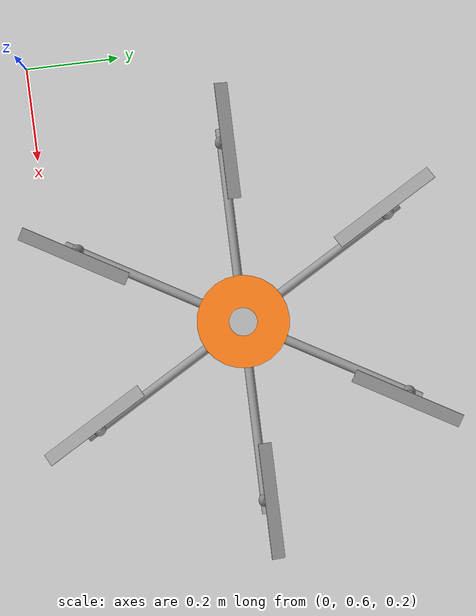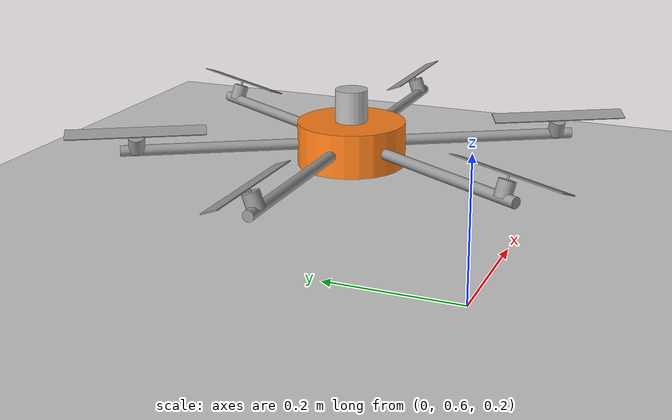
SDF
<?xml version="1.0"?>
<sdf version="1.5">
<world name="mrsim">
    <physics type='ode'>
        <max_step_size>0.002000</max_step_size>
        <real_time_factor>1.000000</real_time_factor>
        <real_time_update_rate>500.000000</real_time_update_rate>
        <gravity>0 0 -9.81</gravity>
        <magnetic_field>23.816e-6 -0.41e-6 -39.829e-6</magnetic_field>
    </physics>

    <light type="directional" name="sun">
        <cast_shadows>true</cast_shadows>
        <pose>0 0 10 0 0 0</pose>
        <diffuse>0.8 0.8 0.8 1</diffuse>
        <specular>0.2 0.2 0.2 1</specular>
        <attenuation>
        <range>1000</range>
        <constant>0.9</constant>
        <linear>0.01</linear>
        <quadratic>0.001</quadratic>
        </attenuation>
        <direction>-0.5 0.1 -0.9</direction>
    </light>

    <model name="ground_plane">
        <static>true</static>
        <link name="link">
            <pose>0 0 -0.05 0 0 0</pose>
            <collision name="collision">
                <geometry>
                    <box>
                        <size>20 20 0.1</size>
                    </box>
                </geometry>
            </collision>
            <visual name="visual">
                <geometry>
                    <box>
                        <size>20 20 0.1</size>
                    </box>
                </geometry>
                <material>
                    <ambient>0.8 0.8 0.8 1</ambient>
                    <diffuse>0.8 0.8 0.8 1</diffuse>
                    <specular>0.8 0.8 0.8 1</specular>
                </material>
            </visual>
        </link>
    </model>

    <model name="TX">
        <pose>0.6 1 0.2 0 0 0</pose>
        <include>
            <uri>model://mrsim-tilthex</uri>
            <name>tx</name>
        </include>
        <link name="sensors">
                <inertial>
                <mass>0.01</mass>
                <inertia>
                    <ixx>1e-5</ixx><ixy>0</ixy><ixz>0</ixz>
                    <iyy>1e-5</iyy><iyz>0</iyz>
                    <izz>1e-5</izz>
                </inertia>
            </inertial>
            <pose>0 0 0.05 0 0 0</pose>
            <visual name="lidar_visual">
                <pose>0 0 0 0 0 0</pose>
                <geometry>
                    <cylinder>
                        <radius>0.03</radius>
                        <length>0.1</length>
                    </cylinder>
                </geometry>
            </visual>
            <sensor name="imu" type="imu">
                <always_on>1</always_on>
                <update_rate>200</update_rate>
                <imu>
                    <angular_velocity>
                        <x>
                            <noise type="gaussian">
                                <mean>0</mean>
                                <stddev>0.009</stddev>
                                <bias_mean>0.00075</bias_mean>
                                <bias_stddev>0.005</bias_stddev>
                                <dynamic_bias_stddev>0.00002</dynamic_bias_stddev>
                                <dynamic_bias_correlation_time>400.0</dynamic_bias_correlation_time>
                                <precision>0.00025</precision>
                            </noise>
                        </x>
                        <y>
                            <noise type="gaussian">
                                <mean>0</mean>
                                <stddev>0.009</stddev>
                                <bias_mean>0.00075</bias_mean>
                                <bias_stddev>0.005</bias_stddev>
                                <dynamic_bias_stddev>0.00002</dynamic_bias_stddev>
                                <dynamic_bias_correlation_time>400.0</dynamic_bias_correlation_time>
                                <precision>0.00025</precision>
                            </noise>
                        </y>
                        <z>
                            <noise type="gaussian">
                                <mean>0</mean>
                                <stddev>0.009</stddev>
                                <bias_mean>0.00075</bias_mean>
                                <bias_stddev>0.005</bias_stddev>
                                <dynamic_bias_stddev>0.00002</dynamic_bias_stddev>
                                <dynamic_bias_correlation_time>400.0</dynamic_bias_correlation_time>
                                <precision>0.00025</precision>
                            </noise>
                        </z>
                    </angular_velocity>
                    <linear_acceleration>
                        <x>
                            <noise type="gaussian">
                                <mean>0</mean>
                                <stddev>0.021</stddev>
                                <bias_mean>0.05</bias_mean>
                                <bias_stddev>0.0075</bias_stddev>
                                <dynamic_bias_stddev>0.000375</dynamic_bias_stddev>
                                <dynamic_bias_correlation_time>175.0</dynamic_bias_correlation_time>
                                <precision>0.005</precision>
                            </noise>
                        </x>
                        <y>
                            <noise type="gaussian">
                                <mean>0</mean>
                                <stddev>0.021</stddev>
                                <bias_mean>0.05</bias_mean>
                                <bias_stddev>0.0075</bias_stddev>
                                <dynamic_bias_stddev>0.000375</dynamic_bias_stddev>
                                <dynamic_bias_correlation_time>175.0</dynamic_bias_correlation_time>
                                <precision>0.005</precision>
                            </noise>
                        </y>
                        <z>
                            <noise type="gaussian">
                                <mean>0</mean>
                                <stddev>0.021</stddev>
                                <bias_mean>0.05</bias_mean>
                                <bias_stddev>0.0075</bias_stddev>
                                <dynamic_bias_stddev>0.000375</dynamic_bias_stddev>
                                <dynamic_bias_correlation_time>175.0</dynamic_bias_correlation_time>
                                <precision>0.005</precision>
                            </noise>
                        </z>
                    </linear_acceleration>
                </imu>
            </sensor>
            <sensor name="lidar" type="gpu_ray">
                <pose>0 0 0.05 0 0 0</pose>
                <always_on>1</always_on>
                <update_rate>10</update_rate>
                <ray>
                    <scan>
                        <horizontal>
                            <samples>512</samples>
                            <resolution>1</resolution>
                            <min_angle>-3.1416</min_angle>
                            <max_angle>3.1416</max_angle>
                        </horizontal>
                        <vertical>
                            <samples>128</samples>
                            <resolution>1</resolution>
                            <min_angle>-0.7854</min_angle>
                            <max_angle>0.7854</max_angle>
                        </vertical>
                    </scan>
                    <range>
                        <min>0.22</min>
                        <max>10</max>
                        <resolution>0.01</resolution>
                    </range>
                    <noise>
                        <type>gaussian</type>
                        <mean>0</mean>
                        <stddev>0.03</stddev>
                    </noise>
                </ray>
            </sensor>
        </link>
        <joint name="sensors_joint" type="fixed">
            <parent>tx::base</parent>
            <child>sensors</child>
        </joint>
    </model>

    <plugin name="optitrack" filename="optitrack-gazebo-2.0.so">
        <hz>1000</hz>
        <port>1509</port>
        <publish>
            <link>TX::tx::base</link>
            <name>TX</name>
        </publish>
        <publish>
            <link>TX::sensors</link>
            <name>lidar</name>
        </publish>
    </plugin>
</world>
</sdf>

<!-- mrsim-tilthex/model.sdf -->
<sdf version="1.5">
<model name="mrsim-tilthex">
    <link name="base">
        <inertial>
            <mass>2.5</mass>
            <inertia>
                <ixx>0.0115</ixx><ixy>0</ixy><ixz>0</ixz>
                <iyy>0.0115</iyy><iyz>0</iyz>
                <izz>0.0194</izz>
            </inertia>
        </inertial>

        <collision name="body">
            <geometry>
                <cylinder><radius>0.1</radius><length>0.08</length></cylinder>
            </geometry>
        </collision>

        <!-- three spheres to make contact stable -->
        <collision name="land_1">
            <pose>0.067 0 0 0 0 0</pose>
            <geometry>
                <sphere><radius>0.04</radius></sphere>
            </geometry>
        </collision>
        <collision name="land_2">
            <pose>-0.06 0.03 0 0 0 0</pose>
            <geometry>
                <sphere><radius>0.04</radius></sphere>
            </geometry>
        </collision>
        <collision name="land_3">
            <pose>-0.05 -0.03 0 0 0 0</pose>
            <geometry>
                <sphere><radius>0.04</radius></sphere>
            </geometry>
        </collision>

        <!-- contact for the arms -->
        <collision name="arm_1">
            <pose>0.21 0 0 0 1.5708 0</pose>
            <geometry>
                <cylinder><radius>0.01</radius><length>0.42</length></cylinder>
            </geometry>
        </collision>
        <collision name="arm_2">
            <pose>0.1050 0.1819 0 0 1.5708 1.0472</pose>
            <geometry>
                <cylinder><radius>0.01</radius><length>0.42</length></cylinder>
            </geometry>
        </collision>
        <collision name="arm_3">
            <pose>-0.1050 0.1819 0 0 1.5708 -1.0472</pose>
            <geometry>
                <cylinder><radius>0.01</radius><length>0.42</length></cylinder>
            </geometry>
        </collision>
        <collision name="arm_4">
            <pose>-0.21 0 0 0 1.5708 0</pose>
            <geometry>
                <cylinder><radius>0.01</radius><length>0.42</length></cylinder>
            </geometry>
        </collision>
        <collision name="arm_5">
            <pose>-0.1050 -0.1819 0 0 1.5708 1.0472</pose>
            <geometry>
                <cylinder><radius>0.01</radius><length>0.42</length></cylinder>
            </geometry>
        </collision>
        <collision name="arm_6">
            <pose>0.1050 -0.1819 0 0 1.5708 -1.0472</pose>
            <geometry>
                <cylinder><radius>0.01</radius><length>0.42</length></cylinder>
            </geometry>
        </collision>

        <visual name="body">
            <geometry>
                <cylinder><radius>0.1</radius><length>0.08</length></cylinder>
            </geometry>
            <material>
                <diffuse>1.0 0.5 0.1 1</diffuse>
            </material>
        </visual>
        <visual name="arm_1">
            <pose>0.21 0 0 0 1.5708 0</pose>
            <geometry>
                <cylinder><radius>0.01</radius><length>0.42</length></cylinder>
            </geometry>
            <material>
                <diffuse>0.6 0.6 0.6 1</diffuse>
            </material>
        </visual>
        <visual name="arm_2">
            <pose>0.1050 0.1819 0 0 1.5708 1.0472</pose>
            <geometry>
                <cylinder><radius>0.01</radius><length>0.42</length></cylinder>
            </geometry>
            <material>
                <diffuse>0.6 0.6 0.6 1</diffuse>
            </material>
        </visual>
        <visual name="arm_3">
            <pose>-0.1050 0.1819 0 0 1.5708 -1.0472</pose>
            <geometry>
                <cylinder><radius>0.01</radius><length>0.42</length></cylinder>
            </geometry>
            <material>
                <diffuse>0.6 0.6 0.6 1</diffuse>
            </material>
        </visual>
        <visual name="arm_4">
            <pose>-0.21 0 0 0 1.5708 0</pose>
            <geometry>
                <cylinder><radius>0.01</radius><length>0.42</length></cylinder>
            </geometry>
            <material>
                <diffuse>0.6 0.6 0.6 1</diffuse>
            </material>
        </visual>
        <visual name="arm_5">
            <pose>-0.1050 -0.1819 0 0 1.5708 1.0472</pose>
            <geometry>
                <cylinder><radius>0.01</radius><length>0.42</length></cylinder>
            </geometry>
            <material>
                <diffuse>0.6 0.6 0.6 1</diffuse>
            </material>
        </visual>
        <visual name="arm_6">
            <pose>0.1050 -0.1819 0 0 1.5708 -1.0472</pose>
            <geometry>
                <cylinder><radius>0.01</radius><length>0.42</length></cylinder>
            </geometry>
            <material>
                <diffuse>0.6 0.6 0.6 1</diffuse>
            </material>
        </visual>
    </link>

    <include>
        <uri>model://mrsim-rotor</uri>
        <name>rotor_1_link</name>
        <pose>0.39 0 0 -0.3491 0 0</pose>
    </include>
    <joint name="rotor_1_joint" type="revolute">
        <parent>base</parent>
        <child>rotor_1_link::propeller</child>
        <axis><xyz>0 0 1</xyz></axis>
    </joint>

    <include>
        <uri>model://mrsim-rotor</uri>
        <name>rotor_2_link</name>
        <pose>0.195 0.3377 0 0.3491 0 1.0472</pose>
    </include>
    <joint name="rotor_2_joint" type="revolute">
        <parent>base</parent>
        <child>rotor_2_link::propeller</child>
        <axis><xyz>0 0 1</xyz></axis>
    </joint>

    <include>
        <uri>model://mrsim-rotor</uri>
        <name>rotor_3_link</name>
        <pose>-0.195 0.3377 0 -0.3491 0 2.0944</pose>
    </include>
    <joint name="rotor_3_joint" type="revolute">
        <parent>base</parent>
        <child>rotor_3_link::propeller</child>
        <axis><xyz>0 0 1</xyz></axis>
    </joint>

    <include>
        <uri>model://mrsim-rotor</uri>
        <name>rotor_4_link</name>
        <pose>-0.39 0 0 -0.3491 0 0</pose>
    </include>
    <joint name="rotor_4_joint" type="revolute">
        <parent>base</parent>
        <child>rotor_4_link::propeller</child>
        <axis><xyz>0 0 1</xyz></axis>
    </joint>

    <include>
        <uri>model://mrsim-rotor</uri>
        <name>rotor_5_link</name>
        <pose>-0.195 -0.3377 0 -0.3491 0 -2.0944</pose>
    </include>
    <joint name="rotor_5_joint" type="revolute">
        <parent>base</parent>
        <child>rotor_5_link::propeller</child>
        <axis><xyz>0 0 1</xyz></axis>
    </joint>

    <include>
        <uri>model://mrsim-rotor</uri>
        <name>rotor_6_link</name>
        <pose>0.195 -0.3377 0 0.3491 0 -1.0472</pose>
    </include>
    <joint name="rotor_6_joint" type="revolute">
        <parent>base</parent>
        <child>rotor_6_link::propeller</child>
        <axis><xyz>0 0 1</xyz></axis>
    </joint>

    <plugin name="mrsim" filename="mrsim-gazebo.so">
        <link>base</link>
        <rotors>
        <noise>0.03</noise>
            <cf>11.4e-4</cf>
            <ct>2.4e-5</ct>
            <rotor><joint spin="cw">rotor_1_joint</joint></rotor>
            <rotor><joint spin="ccw">rotor_2_joint</joint></rotor>
            <rotor><joint spin="cw">rotor_3_joint</joint></rotor>
            <rotor><joint spin="ccw">rotor_4_joint</joint></rotor>
            <rotor><joint spin="cw">rotor_5_joint</joint></rotor>
            <rotor><joint spin="ccw">rotor_6_joint</joint></rotor>
        </rotors>
    </plugin>
</model>
</sdf>

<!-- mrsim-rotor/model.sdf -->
<sdf version="1.5">
  <model name="mrsim-rotor">
    <link name="propeller">
      <inertial>
        <mass>0.07</mass>
        <inertia>
          <ixx>4e-5</ixx><ixy>0</ixy><ixz>0</ixz>
          <iyy>4e-5</iyy><iyz>0</iyz>
          <izz>8e-5</izz>
        </inertia>
      </inertial>

      <collision name="collision">
        <pose>0 0 0.04 0 0 0</pose>
        <geometry>
          <cylinder><radius>0.127</radius><length>0.002</length></cylinder>
        </geometry>
      </collision>

      <visual name="motor">
        <pose>0 0 0.015 0 0 0</pose>
        <geometry>
          <cylinder><radius>0.015</radius><length>0.03</length></cylinder>
        </geometry>
        <material>
          <diffuse>0.6 0.6 0.6 1</diffuse>
        </material>
      </visual>

      <visual name="axle">
        <pose>0 0 0.035 0 0 0</pose>
        <geometry>
          <cylinder><radius>0.002</radius><length>0.01</length></cylinder>
        </geometry>
        <material>
          <diffuse>0.6 0.6 0.6 1</diffuse>
        </material>
      </visual>

      <visual name="blade">
        <pose>0 0 0.04 0 0 0</pose>
        <geometry>
          <box><size>0.25 0.03 0.002</size></box>
        </geometry>
        <material>
          <diffuse>0.6 0.6 0.6 1</diffuse>
        </material>
      </visual>
    </link>
  </model>
</sdf>
